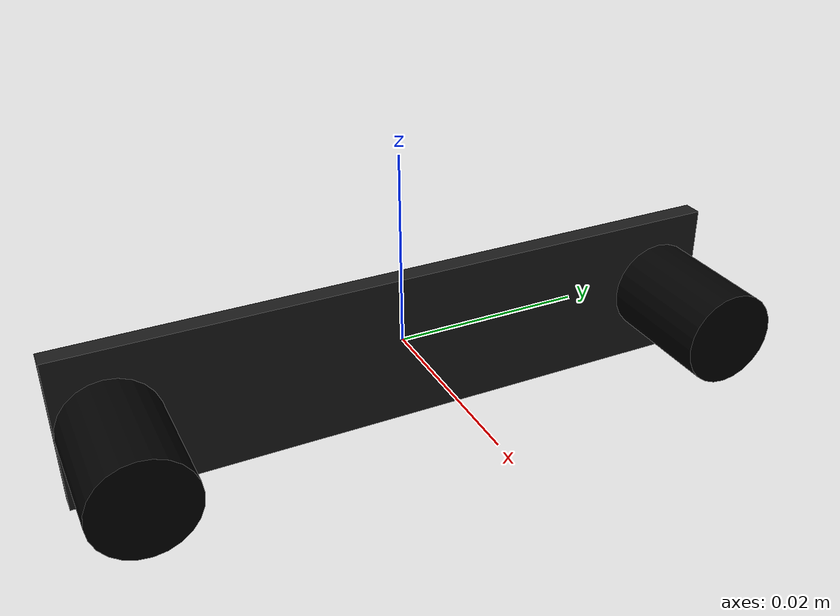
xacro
<?xml version="1.0"?>

<robot name="elp_standalone" xmlns:xacro="http://ros.org/wiki/xacro">
  <!-- include the elp_stereo_camera macro -->
  <xacro:include filename="$(find elp_stereo_synchronized_ros_pkg)/description/elp_stereo_camera.urdf.xacro"/>

  <!-- use the elp_stereo_camera macro to create a camera with name "elp" -->
  <elp_stereo_camera name="elp"/>
</robot>

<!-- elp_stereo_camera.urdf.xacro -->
<robot name="elp_stereo_camera" xmlns:xacro="http://ros.org/wiki/xacro">
  <xacro:property name="M_PI" value="3.1415926535897931" />
  <xacro:property name="INTEROCULAR" value="0.060" />
  <xacro:property name="BOARD_THICKNESS" value="0.002" />
  <xacro:property name="LENS_LENGTH" value="0.014" />

  <xacro:macro name="elp_stereo_camera" params="name">
    <link name="${name}">
      <visual>
        <geometry>
          <box size="0.002 0.070 .016"/>
        </geometry>
        <origin xyz="0.001 0 0"/>
        <material name="gray">
          <color rgba="0.1 0.1 0.1 1"/>
        </material>
      </visual>
    </link>

    <link name="${name}_left_frame">
      <visual>
        <geometry>
          <cylinder length="${LENS_LENGTH}" radius="0.005"/>
        </geometry>
        <origin xyz="${-LENS_LENGTH/2} 0 0" rpy="0 ${M_PI/2} 0"/>
        <material name="black">
          <color rgba="0 0 0 1"/>
        </material>
      </visual>
    </link>

    <link name="${name}_left_optical_frame">
    </link>

    <link name="${name}_right_frame">
      <visual>
        <geometry>
          <cylinder length="${LENS_LENGTH}" radius="0.005"/>
        </geometry>
        <origin xyz="${-LENS_LENGTH/2} 0 0" rpy="0 ${M_PI/2} 0"/>
        <material name="black">
          <color rgba="0 0 0 1"/>
        </material>
      </visual>
    </link>

    <link name="${name}_right_optical_frame">
    </link>

    <joint name="${name}_to_${name}_left_frame" type="fixed">
      <parent link="${name}"/>
      <child link="${name}_left_frame"/>
      <origin xyz="${BOARD_THICKNESS/2 + LENS_LENGTH} ${INTEROCULAR/2} 0"/>
    </joint>

    <joint name="${name}_left_frame_to_${name}_left_optical_frame" type="fixed">
      <parent link="${name}_left_frame"/>
      <child link="${name}_left_optical_frame"/>
      <origin xyz="0 0 0" rpy="${-M_PI/2} 0 ${-M_PI/2}"/>
    </joint>

    <joint name="${name}_to_${name}_right_frame" type="fixed">
      <parent link="${name}"/>
      <child link="${name}_right_frame"/>
      <origin xyz="${BOARD_THICKNESS/2 + LENS_LENGTH} ${-INTEROCULAR/2} 0"/>
    </joint>

    <joint name="${name}_right_frame_to_${name}_right_optical_frame" type="fixed">
      <parent link="${name}_right_frame"/>
      <child link="${name}_right_optical_frame"/>
      <origin xyz="0 0 0" rpy="${-M_PI/2} 0 ${-M_PI/2}"/>
    </joint>
  </xacro:macro>
</robot>
